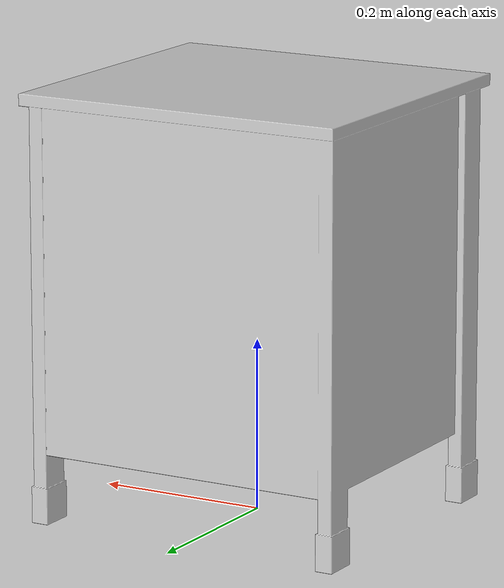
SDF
<?xml version='1.0'?>
<sdf version='1.6'>
  <model name='small_cabinet'>
    <link name='link_0'>
      <inertial>
        <mass>1</mass>
        <inertia>
          <ixx>0.166667</ixx>
          <ixy>0</ixy>
          <ixz>0</ixz>
          <iyy>0.166667</iyy>
          <iyz>0</iyz>
          <izz>0.166667</izz>
        </inertia>
      </inertial>
      <visual name='visual'>
        <pose>0 0 0 1.5708 0 0</pose>
        <geometry>
          <mesh>
            <uri>model://small_cabinet/meshes/small_cabinet.obj</uri>
            <scale>0.0055 0.0055 0.0055</scale>
          </mesh>
        </geometry>
        <material>
          <ambient>0.6 0.6 0.6 1</ambient> <!-- Cor clara sob luz ambiente -->
          <diffuse>0.8 0.8 0.8 1</diffuse> <!-- Cor base metálica clara -->
          <specular>1.0 1.0 1.0 1</specular> <!-- Reflexo forte para aparência de alumínio -->
          <emissive>0 0 0 1</emissive> <!-- Sem emissão de luz -->
        </material>
      </visual>
      <collision name='collision'>
        <geometry>
          <mesh>
            <uri>model://small_cabinet/meshes/small_cabinet.obj</uri>
            <scale>0.0055 0.0055 0.0055</scale>
          </mesh>
        </geometry>
      </collision>
    </link>
    <static>1</static>
    <allow_auto_disable>1</allow_auto_disable>
  </model>
</sdf>
